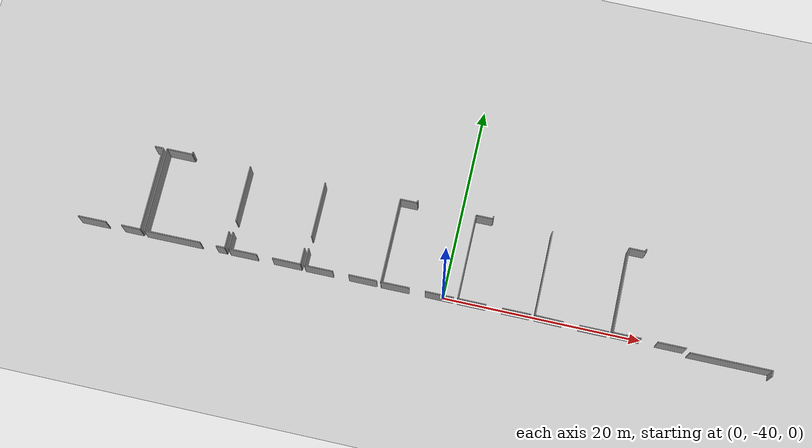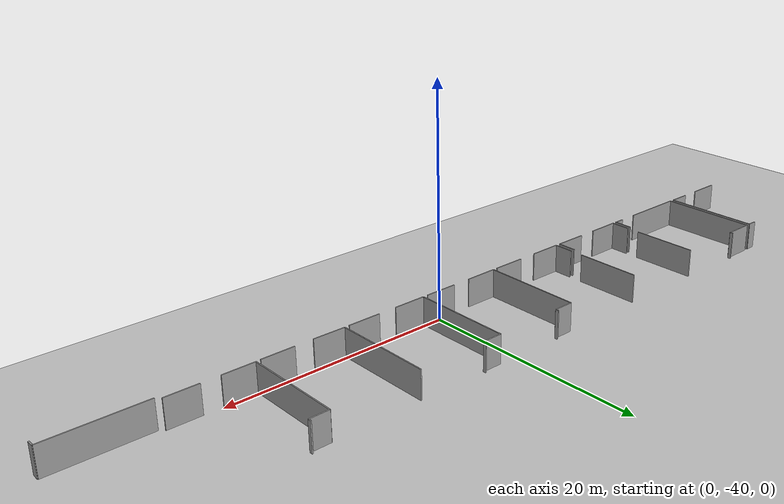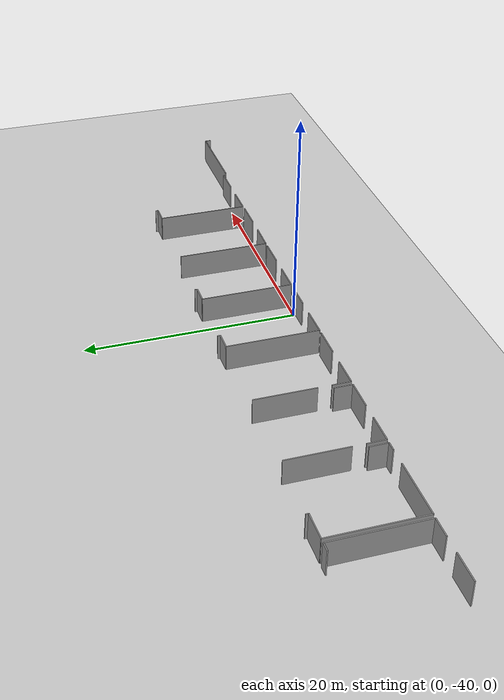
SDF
<sdf version="1.6">
 <world name="default">
  <model name="ground_plane">
   <static>1</static>
   <link name="link">
    <collision name="collision">
     <geometry><plane><normal>0 0 1</normal><size>100 100</size></plane></geometry>
     <surface><friction><ode><mu>100</mu><mu2>50</mu2></ode></friction></surface>
    </collision>
    <visual name="visual">
     <cast_shadows>0</cast_shadows>
     <geometry><plane><normal>0 0 1</normal><size>100 100</size></plane></geometry>
     <material>
      <script><uri>file://media/materials/scripts/gazebo.material</uri><name>Gazebo/Grey</name></script>
     </material>
    </visual>
   </link>
  </model>
  <model name="0510035520_A_40_1_103">
   <static>1</static>
   <link name="Wall_611">
    <collision name="Wall_611_Collision">
     <geometry><box><size>0.849994606633 0.1 2.5</size></box></geometry>
     <pose>0.424997303317 0 1.25 0 0 0</pose>
    </collision>
    <visual name="Wall_611_Visual">
     <pose>0.424997303317 0 1.25 0 0 0</pose>
     <geometry><box><size>0.849994606633 0.1 2.5</size></box></geometry>
     <material>
      <script><uri>file://media/materials/scripts/gazebo.material</uri><name>Gazebo/Grey</name></script>
      <ambient>1 1 1 1</ambient>
     </material>
    </visual>
    <pose>80.5614177575 -100.171953224 0 0 0 0.0</pose>
   </link>
   <link name="Wall_612">
    <collision name="Wall_612_Collision">
     <geometry><box><size>8.68116319059 0.1 2.5</size></box></geometry>
     <pose>4.34058159529 0 1.25 0 0 0</pose>
    </collision>
    <visual name="Wall_612_Visual">
     <pose>4.34058159529 0 1.25 0 0 0</pose>
     <geometry><box><size>8.68116319059 0.1 2.5</size></box></geometry>
     <material>
      <script><uri>file://media/materials/scripts/gazebo.material</uri><name>Gazebo/Grey</name></script>
      <ambient>1 1 1 1</ambient>
     </material>
    </visual>
    <pose>81.4114123641 -100.171953224 0 0 0 -1.57079632679</pose>
   </link>
   <link name="Wall_613">
    <collision name="Wall_613_Collision">
     <geometry><box><size>1.94008921263 0.1 2.5</size></box></geometry>
     <pose>0.970044606316 0 1.25 0 0 0</pose>
    </collision>
    <visual name="Wall_613_Visual">
     <pose>0.970044606316 0 1.25 0 0 0</pose>
     <geometry><box><size>1.94008921263 0.1 2.5</size></box></geometry>
     <material>
      <script><uri>file://media/materials/scripts/gazebo.material</uri><name>Gazebo/Grey</name></script>
      <ambient>1 1 1 1</ambient>
     </material>
    </visual>
    <pose>81.4114123641 -108.853116414 0 0 0 3.14159265359</pose>
   </link>
   <link name="Wall_614">
    <collision name="Wall_614_Collision">
     <geometry><box><size>2.86527180269 0.1 2.5</size></box></geometry>
     <pose>1.43263590134 0 1.25 0 0 0</pose>
    </collision>
    <visual name="Wall_614_Visual">
     <pose>1.43263590134 0 1.25 0 0 0</pose>
     <geometry><box><size>2.86527180269 0.1 2.5</size></box></geometry>
     <material>
      <script><uri>file://media/materials/scripts/gazebo.material</uri><name>Gazebo/Grey</name></script>
      <ambient>1 1 1 1</ambient>
     </material>
    </visual>
    <pose>77.8726023312 -108.853116414 0 0 0 -3.13503769388</pose>
   </link>
   <link name="Wall_615">
    <collision name="Wall_615_Collision">
     <geometry><box><size>8.71542693257 0.1 2.5</size></box></geometry>
     <pose>4.35771346629 0 1.25 0 0 0</pose>
    </collision>
    <visual name="Wall_615_Visual">
     <pose>4.35771346629 0 1.25 0 0 0</pose>
     <geometry><box><size>8.71542693257 0.1 2.5</size></box></geometry>
     <material>
      <script><uri>file://media/materials/scripts/gazebo.material</uri><name>Gazebo/Grey</name></script>
      <ambient>1 1 1 1</ambient>
     </material>
    </visual>
    <pose>81.8223234624 -108.881035019 0 0 0 1.57079632679</pose>
   </link>
   <link name="Wall_616">
    <collision name="Wall_616_Collision">
     <geometry><box><size>2.63323202264 0.1 2.5</size></box></geometry>
     <pose>1.31661601132 0 1.25 0 0 0</pose>
    </collision>
    <visual name="Wall_616_Visual">
     <pose>1.31661601132 0 1.25 0 0 0</pose>
     <geometry><box><size>2.63323202264 0.1 2.5</size></box></geometry>
     <material>
      <script><uri>file://media/materials/scripts/gazebo.material</uri><name>Gazebo/Grey</name></script>
      <ambient>1 1 1 1</ambient>
     </material>
    </visual>
    <pose>81.8223234624 -100.165608086 0 0 0 0.0</pose>
   </link>
   <link name="Wall_617">
    <collision name="Wall_617_Collision">
     <geometry><box><size>0.259896828066 0.1 2.5</size></box></geometry>
     <pose>0.129948414033 0 1.25 0 0 0</pose>
    </collision>
    <visual name="Wall_617_Visual">
     <pose>0.129948414033 0 1.25 0 0 0</pose>
     <geometry><box><size>0.259896828066 0.1 2.5</size></box></geometry>
     <material>
      <script><uri>file://media/materials/scripts/gazebo.material</uri><name>Gazebo/Grey</name></script>
      <ambient>1 1 1 1</ambient>
     </material>
    </visual>
    <pose>84.4555554851 -100.165608086 0 0 0 1.57079632679</pose>
   </link>
   <link name="Wall_621">
    <collision name="Wall_621_Collision">
     <geometry><box><size>1.6974511583 0.1 2.5</size></box></geometry>
     <pose>0.848725579152 0 1.25 0 0 0</pose>
    </collision>
    <visual name="Wall_621_Visual">
     <pose>0.848725579152 0 1.25 0 0 0</pose>
     <geometry><box><size>1.6974511583 0.1 2.5</size></box></geometry>
     <material>
      <script><uri>file://media/materials/scripts/gazebo.material</uri><name>Gazebo/Grey</name></script>
      <ambient>1 1 1 1</ambient>
     </material>
    </visual>
    <pose>90.0819157239 -107.169116947 0 0 0 -1.57079632679</pose>
   </link>
   <link name="Wall_622">
    <collision name="Wall_622_Collision">
     <geometry><box><size>0.900755705865 0.1 2.5</size></box></geometry>
     <pose>0.450377852932 0 1.25 0 0 0</pose>
    </collision>
    <visual name="Wall_622_Visual">
     <pose>0.450377852932 0 1.25 0 0 0</pose>
     <geometry><box><size>0.900755705865 0.1 2.5</size></box></geometry>
     <material>
      <script><uri>file://media/materials/scripts/gazebo.material</uri><name>Gazebo/Grey</name></script>
      <ambient>1 1 1 1</ambient>
     </material>
    </visual>
    <pose>90.0819157239 -108.866568106 0 0 0 3.14159265359</pose>
   </link>
   <link name="Wall_623">
    <collision name="Wall_623_Collision">
     <geometry><box><size>5.74465181628 0.1 2.5</size></box></geometry>
     <pose>2.87232590814 0 1.25 0 0 0</pose>
    </collision>
    <visual name="Wall_623_Visual">
     <pose>2.87232590814 0 1.25 0 0 0</pose>
     <geometry><box><size>5.74465181628 0.1 2.5</size></box></geometry>
     <material>
      <script><uri>file://media/materials/scripts/gazebo.material</uri><name>Gazebo/Grey</name></script>
      <ambient>1 1 1 1</ambient>
     </material>
    </visual>
    <pose>87.5669570625 -108.866568106 0 0 0 -3.13907432367</pose>
   </link>
   <link name="Wall_624">
    <collision name="Wall_624_Collision">
     <geometry><box><size>1.75658783891 0.1 2.5</size></box></geometry>
     <pose>0.878293919455 0 1.25 0 0 0</pose>
    </collision>
    <visual name="Wall_624_Visual">
     <pose>0.878293919455 0 1.25 0 0 0</pose>
     <geometry><box><size>1.75658783891 0.1 2.5</size></box></geometry>
     <material>
      <script><uri>file://media/materials/scripts/gazebo.material</uri><name>Gazebo/Grey</name></script>
      <ambient>1 1 1 1</ambient>
     </material>
    </visual>
    <pose>90.4798827419 -108.879765991 0 0 0 1.57079632679</pose>
   </link>
   <link name="Wall_625">
    <collision name="Wall_625_Collision">
     <geometry><box><size>5.79209522782 0.1 2.5</size></box></geometry>
     <pose>2.89604761391 0 1.25 0 0 0</pose>
    </collision>
    <visual name="Wall_625_Visual">
     <pose>2.89604761391 0 1.25 0 0 0</pose>
     <geometry><box><size>5.79209522782 0.1 2.5</size></box></geometry>
     <material>
      <script><uri>file://media/materials/scripts/gazebo.material</uri><name>Gazebo/Grey</name></script>
      <ambient>1 1 1 1</ambient>
     </material>
    </visual>
    <pose>90.4798827419 -105.945013039 0 0 0 1.57079632679</pose>
   </link>
   <link name="Wall_631">
    <collision name="Wall_631_Collision">
     <geometry><box><size>1.69262885388 0.1 2.5</size></box></geometry>
     <pose>0.846314426939 0 1.25 0 0 0</pose>
    </collision>
    <visual name="Wall_631_Visual">
     <pose>0.846314426939 0 1.25 0 0 0</pose>
     <geometry><box><size>1.69262885388 0.1 2.5</size></box></geometry>
     <material>
      <script><uri>file://media/materials/scripts/gazebo.material</uri><name>Gazebo/Grey</name></script>
      <ambient>1 1 1 1</ambient>
     </material>
    </visual>
    <pose>97.8075012214 -107.171655002 0 0 0 -1.57079632679</pose>
   </link>
   <link name="Wall_632">
    <collision name="Wall_632_Collision">
     <geometry><box><size>2.87891574292 0.1 2.5</size></box></geometry>
     <pose>1.43945787146 0 1.25 0 0 0</pose>
    </collision>
    <visual name="Wall_632_Visual">
     <pose>1.43945787146 0 1.25 0 0 0</pose>
     <geometry><box><size>2.87891574292 0.1 2.5</size></box></geometry>
     <material>
      <script><uri>file://media/materials/scripts/gazebo.material</uri><name>Gazebo/Grey</name></script>
      <ambient>1 1 1 1</ambient>
     </material>
    </visual>
    <pose>97.8075012214 -108.864283856 0 0 0 3.14159265359</pose>
   </link>
   <link name="Wall_633">
    <collision name="Wall_633_Collision">
     <geometry><box><size>2.86220645316 0.1 2.5</size></box></geometry>
     <pose>1.43110322658 0 1.25 0 0 0</pose>
    </collision>
    <visual name="Wall_633_Visual">
     <pose>1.43110322658 0 1.25 0 0 0</pose>
     <geometry><box><size>2.86220645316 0.1 2.5</size></box></geometry>
     <material>
      <script><uri>file://media/materials/scripts/gazebo.material</uri><name>Gazebo/Grey</name></script>
      <ambient>1 1 1 1</ambient>
     </material>
    </visual>
    <pose>93.342047322 -108.864283856 0 0 0 -3.1361834663</pose>
   </link>
   <link name="Wall_634">
    <collision name="Wall_634_Collision">
     <geometry><box><size>1.73780623219 0.1 2.5</size></box></geometry>
     <pose>0.868903116097 0 1.25 0 0 0</pose>
    </collision>
    <visual name="Wall_634_Visual">
     <pose>0.868903116097 0 1.25 0 0 0</pose>
     <geometry><box><size>1.73780623219 0.1 2.5</size></box></geometry>
     <material>
      <script><uri>file://media/materials/scripts/gazebo.material</uri><name>Gazebo/Grey</name></script>
      <ambient>1 1 1 1</ambient>
     </material>
    </visual>
    <pose>98.2217117912 -108.879765991 0 0 0 1.57079632679</pose>
   </link>
   <link name="Wall_635">
    <collision name="Wall_635_Collision">
     <geometry><box><size>5.74894829348 0.1 2.5</size></box></geometry>
     <pose>2.87447414674 0 1.25 0 0 0</pose>
    </collision>
    <visual name="Wall_635_Visual">
     <pose>2.87447414674 0 1.25 0 0 0</pose>
     <geometry><box><size>5.74894829348 0.1 2.5</size></box></geometry>
     <material>
      <script><uri>file://media/materials/scripts/gazebo.material</uri><name>Gazebo/Grey</name></script>
      <ambient>1 1 1 1</ambient>
     </material>
    </visual>
    <pose>98.2217117912 -105.90719602 0 0 0 1.57079632679</pose>
   </link>
   <link name="Wall_641">
    <collision name="Wall_641_Collision">
     <geometry><box><size>2.8603879417 0.1 2.5</size></box></geometry>
     <pose>1.43019397085 0 1.25 0 0 0</pose>
    </collision>
    <visual name="Wall_641_Visual">
     <pose>1.43019397085 0 1.25 0 0 0</pose>
     <geometry><box><size>2.8603879417 0.1 2.5</size></box></geometry>
     <material>
      <script><uri>file://media/materials/scripts/gazebo.material</uri><name>Gazebo/Grey</name></script>
      <ambient>1 1 1 1</ambient>
     </material>
    </visual>
    <pose>105.544254161 -108.873674659 0 0 0 3.14159265359</pose>
   </link>
   <link name="Wall_642">
    <collision name="Wall_642_Collision">
     <geometry><box><size>2.86369389156 0.1 2.5</size></box></geometry>
     <pose>1.43184694578 0 1.25 0 0 0</pose>
    </collision>
    <visual name="Wall_642_Visual">
     <pose>1.43184694578 0 1.25 0 0 0</pose>
     <geometry><box><size>2.86369389156 0.1 2.5</size></box></geometry>
     <material>
      <script><uri>file://media/materials/scripts/gazebo.material</uri><name>Gazebo/Grey</name></script>
      <ambient>1 1 1 1</ambient>
     </material>
    </visual>
    <pose>101.085399204 -108.873674659 0 0 0 -3.13946556294</pose>
   </link>
   <link name="Wall_643">
    <collision name="Wall_643_Collision">
     <geometry><box><size>8.69258443792 0.1 2.5</size></box></geometry>
     <pose>4.34629221896 0 1.25 0 0 0</pose>
    </collision>
    <visual name="Wall_643_Visual">
     <pose>4.34629221896 0 1.25 0 0 0</pose>
     <geometry><box><size>8.69258443792 0.1 2.5</size></box></geometry>
     <material>
      <script><uri>file://media/materials/scripts/gazebo.material</uri><name>Gazebo/Grey</name></script>
      <ambient>1 1 1 1</ambient>
     </material>
    </visual>
    <pose>105.957195703 -108.879765991 0 0 0 1.57079632679</pose>
   </link>
   <link name="Wall_644">
    <collision name="Wall_644_Collision">
     <geometry><box><size>1.73704481571 0.1 2.5</size></box></geometry>
     <pose>0.868522407853 0 1.25 0 0 0</pose>
    </collision>
    <visual name="Wall_644_Visual">
     <pose>0.868522407853 0 1.25 0 0 0</pose>
     <geometry><box><size>1.73704481571 0.1 2.5</size></box></geometry>
     <material>
      <script><uri>file://media/materials/scripts/gazebo.material</uri><name>Gazebo/Grey</name></script>
      <ambient>1 1 1 1</ambient>
     </material>
    </visual>
    <pose>105.957195703 -100.187181553 0 0 0 0.0</pose>
   </link>
   <link name="Wall_645">
    <collision name="Wall_645_Collision">
     <geometry><box><size>0.274109935851 0.1 2.5</size></box></geometry>
     <pose>0.137054967925 0 1.25 0 0 0</pose>
    </collision>
    <visual name="Wall_645_Visual">
     <pose>0.137054967925 0 1.25 0 0 0</pose>
     <geometry><box><size>0.274109935851 0.1 2.5</size></box></geometry>
     <material>
      <script><uri>file://media/materials/scripts/gazebo.material</uri><name>Gazebo/Grey</name></script>
      <ambient>1 1 1 1</ambient>
     </material>
    </visual>
    <pose>107.694240519 -100.187181553 0 0 0 1.57079632679</pose>
   </link>
   <link name="Wall_649">
    <collision name="Wall_649_Collision">
     <geometry><box><size>2.85835749773 0.1 2.5</size></box></geometry>
     <pose>1.42917874887 0 1.25 0 0 0</pose>
    </collision>
    <visual name="Wall_649_Visual">
     <pose>1.42917874887 0 1.25 0 0 0</pose>
     <geometry><box><size>2.85835749773 0.1 2.5</size></box></geometry>
     <material>
      <script><uri>file://media/materials/scripts/gazebo.material</uri><name>Gazebo/Grey</name></script>
      <ambient>1 1 1 1</ambient>
     </material>
    </visual>
    <pose>113.285575599 -108.867329522 0 0 0 3.14159265359</pose>
   </link>
   <link name="Wall_650">
    <collision name="Wall_650_Collision">
     <geometry><box><size>2.86701385805 0.1 2.5</size></box></geometry>
     <pose>1.43350692902 0 1.25 0 0 0</pose>
    </collision>
    <visual name="Wall_650_Visual">
     <pose>1.43350692902 0 1.25 0 0 0</pose>
     <geometry><box><size>2.86701385805 0.1 2.5</size></box></geometry>
     <material>
      <script><uri>file://media/materials/scripts/gazebo.material</uri><name>Gazebo/Grey</name></script>
      <ambient>1 1 1 1</ambient>
     </material>
    </visual>
    <pose>108.824182588 -108.867329522 0 0 0 -3.1372548621</pose>
   </link>
   <link name="Wall_651">
    <collision name="Wall_651_Collision">
     <geometry><box><size>8.70451329624 0.1 2.5</size></box></geometry>
     <pose>4.35225664812 0 1.25 0 0 0</pose>
    </collision>
    <visual name="Wall_651_Visual">
     <pose>4.35225664812 0 1.25 0 0 0</pose>
     <geometry><box><size>8.70451329624 0.1 2.5</size></box></geometry>
     <material>
      <script><uri>file://media/materials/scripts/gazebo.material</uri><name>Gazebo/Grey</name></script>
      <ambient>1 1 1 1</ambient>
     </material>
    </visual>
    <pose>113.703593251 -108.877227936 0 0 0 1.57079632679</pose>
   </link>
   <link name="Wall_652">
    <collision name="Wall_652_Collision">
     <geometry><box><size>1.72486215189 0.1 2.5</size></box></geometry>
     <pose>0.862431075945 0 1.25 0 0 0</pose>
    </collision>
    <visual name="Wall_652_Visual">
     <pose>0.862431075945 0 1.25 0 0 0</pose>
     <geometry><box><size>1.72486215189 0.1 2.5</size></box></geometry>
     <material>
      <script><uri>file://media/materials/scripts/gazebo.material</uri><name>Gazebo/Grey</name></script>
      <ambient>1 1 1 1</ambient>
     </material>
    </visual>
    <pose>113.703593251 -100.17271464 0 0 0 0.0</pose>
   </link>
   <link name="Wall_653">
    <collision name="Wall_653_Collision">
     <geometry><box><size>0.25964302257 0.1 2.5</size></box></geometry>
     <pose>0.129821511285 0 1.25 0 0 0</pose>
    </collision>
    <visual name="Wall_653_Visual">
     <pose>0.129821511285 0 1.25 0 0 0</pose>
     <geometry><box><size>0.25964302257 0.1 2.5</size></box></geometry>
     <material>
      <script><uri>file://media/materials/scripts/gazebo.material</uri><name>Gazebo/Grey</name></script>
      <ambient>1 1 1 1</ambient>
     </material>
    </visual>
    <pose>115.428455403 -100.17271464 0 0 0 1.57079632679</pose>
   </link>
   <link name="Wall_657">
    <collision name="Wall_657_Collision">
     <geometry><box><size>2.86292599666 0.1 2.5</size></box></geometry>
     <pose>1.43146299833 0 1.25 0 0 0</pose>
    </collision>
    <visual name="Wall_657_Visual">
     <pose>1.43146299833 0 1.25 0 0 0</pose>
     <geometry><box><size>2.86292599666 0.1 2.5</size></box></geometry>
     <material>
      <script><uri>file://media/materials/scripts/gazebo.material</uri><name>Gazebo/Grey</name></script>
      <ambient>1 1 1 1</ambient>
     </material>
    </visual>
    <pose>121.041617756 -108.877227936 0 0 0 3.14159265359</pose>
   </link>
   <link name="Wall_658">
    <collision name="Wall_658_Collision">
     <geometry><box><size>2.85328138781 0.1 2.5</size></box></geometry>
     <pose>1.4266406939 0 1.25 0 0 0</pose>
    </collision>
    <visual name="Wall_658_Visual">
     <pose>1.4266406939 0 1.25 0 0 0</pose>
     <geometry><box><size>2.85328138781 0.1 2.5</size></box></geometry>
     <material>
      <script><uri>file://media/materials/scripts/gazebo.material</uri><name>Gazebo/Grey</name></script>
      <ambient>1 1 1 1</ambient>
     </material>
    </visual>
    <pose>116.556874639 -108.877227936 0 0 0 3.14159265359</pose>
   </link>
   <link name="Wall_659">
    <collision name="Wall_659_Collision">
     <geometry><box><size>8.71948782051 0.1 2.5</size></box></geometry>
     <pose>4.35974391025 0 1.25 0 0 0</pose>
    </collision>
    <visual name="Wall_659_Visual">
     <pose>4.35974391025 0 1.25 0 0 0</pose>
     <geometry><box><size>8.71948782051 0.1 2.5</size></box></geometry>
     <material>
      <script><uri>file://media/materials/scripts/gazebo.material</uri><name>Gazebo/Grey</name></script>
      <ambient>1 1 1 1</ambient>
     </material>
    </visual>
    <pose>121.460904436 -108.867583328 0 0 0 1.57079632679</pose>
   </link>
   <link name="Wall_665">
    <collision name="Wall_665_Collision">
     <geometry><box><size>2.89668212765 0.1 2.5</size></box></geometry>
     <pose>1.44834106383 0 1.25 0 0 0</pose>
    </collision>
    <visual name="Wall_665_Visual">
     <pose>1.44834106383 0 1.25 0 0 0</pose>
     <geometry><box><size>2.89668212765 0.1 2.5</size></box></geometry>
     <material>
      <script><uri>file://media/materials/scripts/gazebo.material</uri><name>Gazebo/Grey</name></script>
      <ambient>1 1 1 1</ambient>
     </material>
    </visual>
    <pose>128.81923338 -108.915806372 0 0 0 3.14159265359</pose>
   </link>
   <link name="Wall_666">
    <collision name="Wall_666_Collision">
     <geometry><box><size>2.84379186927 0.1 2.5</size></box></geometry>
     <pose>1.42189593464 0 1.25 0 0 0</pose>
    </collision>
    <visual name="Wall_666_Visual">
     <pose>1.42189593464 0 1.25 0 0 0</pose>
     <geometry><box><size>2.84379186927 0.1 2.5</size></box></geometry>
     <material>
      <script><uri>file://media/materials/scripts/gazebo.material</uri><name>Gazebo/Grey</name></script>
      <ambient>1 1 1 1</ambient>
     </material>
    </visual>
    <pose>124.304287409 -108.915806372 0 0 0 3.12463453644</pose>
   </link>
   <link name="Wall_667">
    <collision name="Wall_667_Collision">
     <geometry><box><size>8.70222904677 0.1 2.5</size></box></geometry>
     <pose>4.35111452339 0 1.25 0 0 0</pose>
    </collision>
    <visual name="Wall_667_Visual">
     <pose>4.35111452339 0 1.25 0 0 0</pose>
     <geometry><box><size>8.70222904677 0.1 2.5</size></box></geometry>
     <material>
      <script><uri>file://media/materials/scripts/gazebo.material</uri><name>Gazebo/Grey</name></script>
      <ambient>1 1 1 1</ambient>
     </material>
    </visual>
    <pose>129.219738453 -108.875451298 0 0 0 1.57079632679</pose>
   </link>
   <link name="Wall_668">
    <collision name="Wall_668_Collision">
     <geometry><box><size>1.70354249021 0.1 2.5</size></box></geometry>
     <pose>0.851771245106 0 1.25 0 0 0</pose>
    </collision>
    <visual name="Wall_668_Visual">
     <pose>0.851771245106 0 1.25 0 0 0</pose>
     <geometry><box><size>1.70354249021 0.1 2.5</size></box></geometry>
     <material>
      <script><uri>file://media/materials/scripts/gazebo.material</uri><name>Gazebo/Grey</name></script>
      <ambient>1 1 1 1</ambient>
     </material>
    </visual>
    <pose>129.219738453 -100.173222251 0 0 0 0.0</pose>
   </link>
   <link name="Wall_669">
    <collision name="Wall_669_Collision">
     <geometry><box><size>0.277409407301 0.1 2.5</size></box></geometry>
     <pose>0.13870470365 0 1.25 0 0 0</pose>
    </collision>
    <visual name="Wall_669_Visual">
     <pose>0.13870470365 0 1.25 0 0 0</pose>
     <geometry><box><size>0.277409407301 0.1 2.5</size></box></geometry>
     <material>
      <script><uri>file://media/materials/scripts/gazebo.material</uri><name>Gazebo/Grey</name></script>
      <ambient>1 1 1 1</ambient>
     </material>
    </visual>
    <pose>130.923280944 -100.173222251 0 0 0 1.57079632679</pose>
   </link>
   <link name="Wall_673">
    <collision name="Wall_673_Collision">
     <geometry><box><size>2.84515961193 0.1 2.5</size></box></geometry>
     <pose>1.42257980597 0 1.25 0 0 0</pose>
    </collision>
    <visual name="Wall_673_Visual">
     <pose>1.42257980597 0 1.25 0 0 0</pose>
     <geometry><box><size>2.84515961193 0.1 2.5</size></box></geometry>
     <material>
      <script><uri>file://media/materials/scripts/gazebo.material</uri><name>Gazebo/Grey</name></script>
      <ambient>1 1 1 1</ambient>
     </material>
    </visual>
    <pose>136.487966447 -108.873420854 0 0 0 3.14159265359</pose>
   </link>
   <link name="Wall_674">
    <collision name="Wall_674_Collision">
     <geometry><box><size>2.81698793362 0.1 2.5</size></box></geometry>
     <pose>1.40849396681 0 1.25 0 0 0</pose>
    </collision>
    <visual name="Wall_674_Visual">
     <pose>1.40849396681 0 1.25 0 0 0</pose>
     <geometry><box><size>2.81698793362 0.1 2.5</size></box></geometry>
     <material>
      <script><uri>file://media/materials/scripts/gazebo.material</uri><name>Gazebo/Grey</name></script>
      <ambient>1 1 1 1</ambient>
     </material>
    </visual>
    <pose>132.036725655 -108.873420854 0 0 0 -3.14087186806</pose>
   </link>
   <link name="Wall_878">
    <collision name="Wall_878_Collision">
     <geometry><box><size>8.18040494667 0.1 2.5</size></box></geometry>
     <pose>4.09020247333 0 1.25 0 0 0</pose>
    </collision>
    <visual name="Wall_878_Visual">
     <pose>4.09020247333 0 1.25 0 0 0</pose>
     <geometry><box><size>8.18040494667 0.1 2.5</size></box></geometry>
     <material>
      <script><uri>file://media/materials/scripts/gazebo.material</uri><name>Gazebo/Grey</name></script>
      <ambient>1 1 1 1</ambient>
     </material>
    </visual>
    <pose>136.861821943 -109.231540409 0 0 0 0.0</pose>
   </link>
   <link name="Wall_879">
    <collision name="Wall_879_Collision">
     <geometry><box><size>0.570300949867 0.1 2.5</size></box></geometry>
     <pose>0.285150474934 0 1.25 0 0 0</pose>
    </collision>
    <visual name="Wall_879_Visual">
     <pose>0.285150474934 0 1.25 0 0 0</pose>
     <geometry><box><size>0.570300949867 0.1 2.5</size></box></geometry>
     <material>
      <script><uri>file://media/materials/scripts/gazebo.material</uri><name>Gazebo/Grey</name></script>
      <ambient>1 1 1 1</ambient>
     </material>
    </visual>
    <pose>145.042226889 -109.231540409 0 0 0 -1.57079632679</pose>
   </link>
   <pose>-112.2 68.6448144365 0 0 0 0</pose>
  </model>
 </world>
</sdf>
